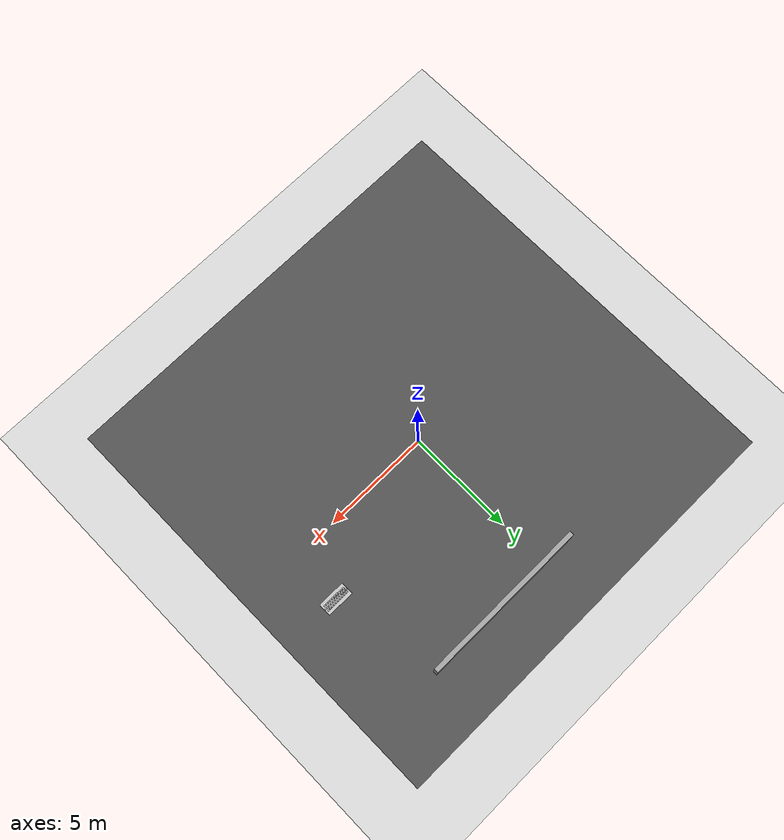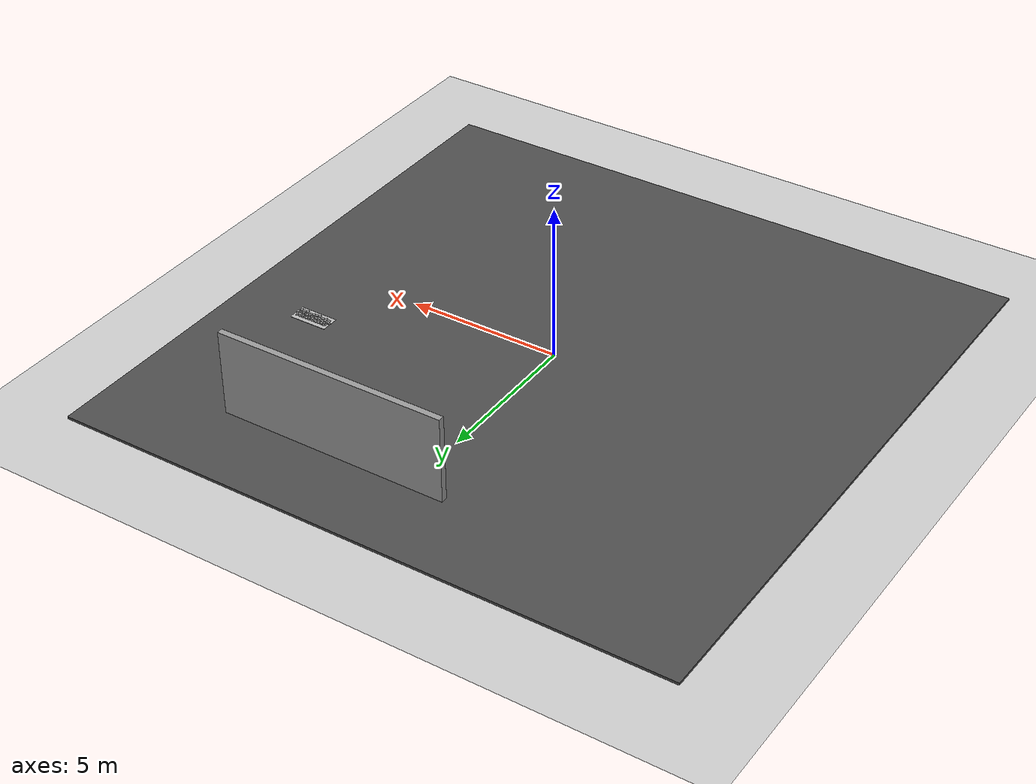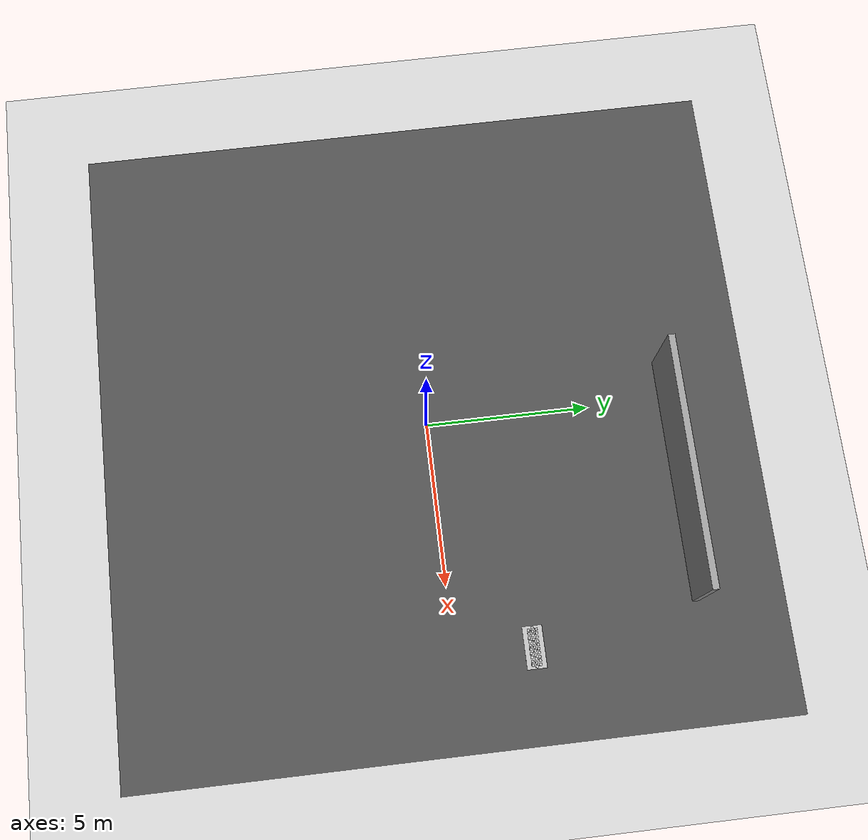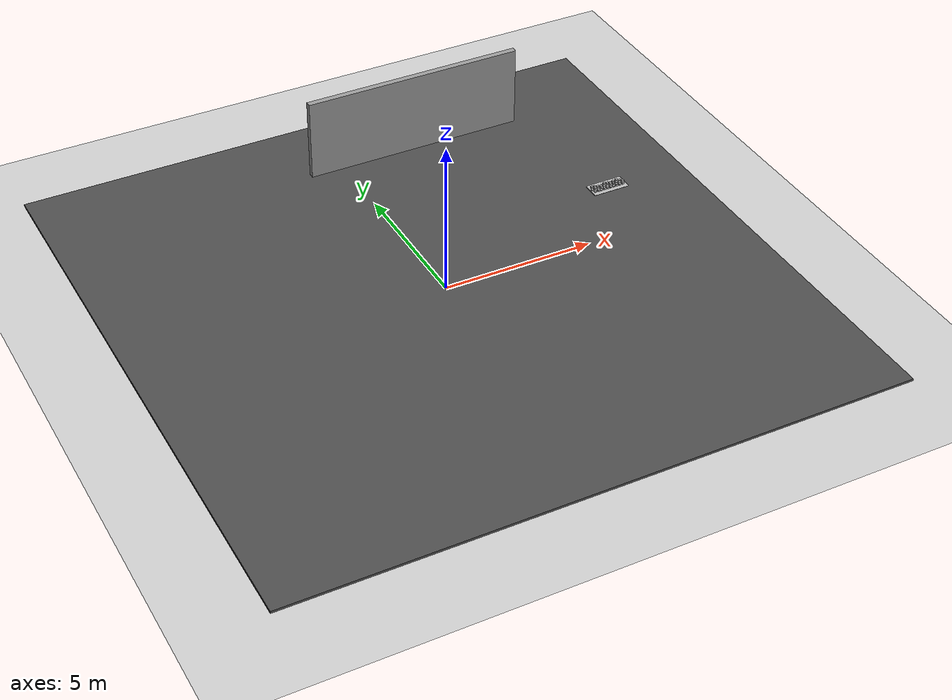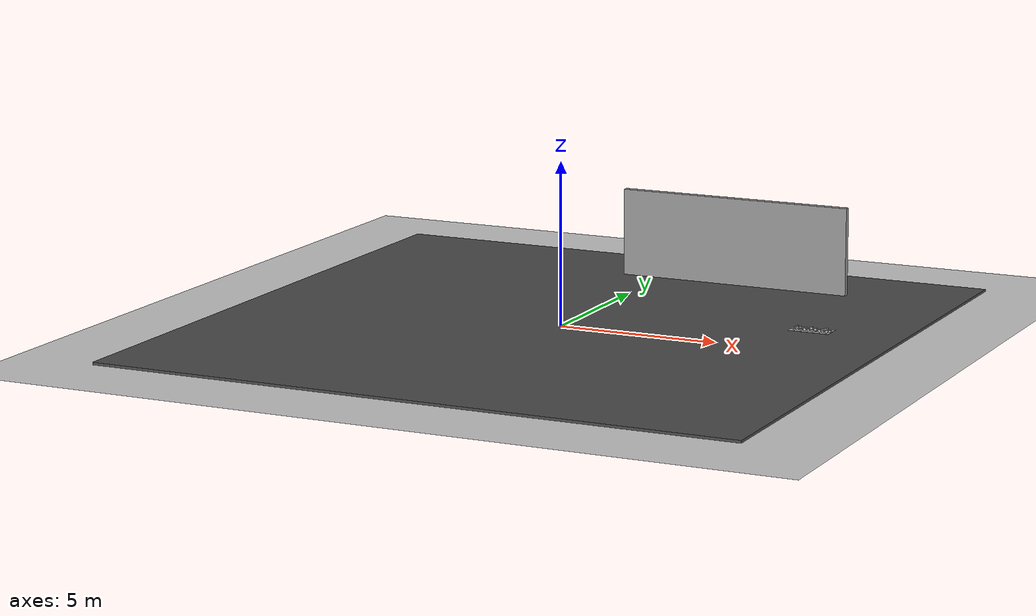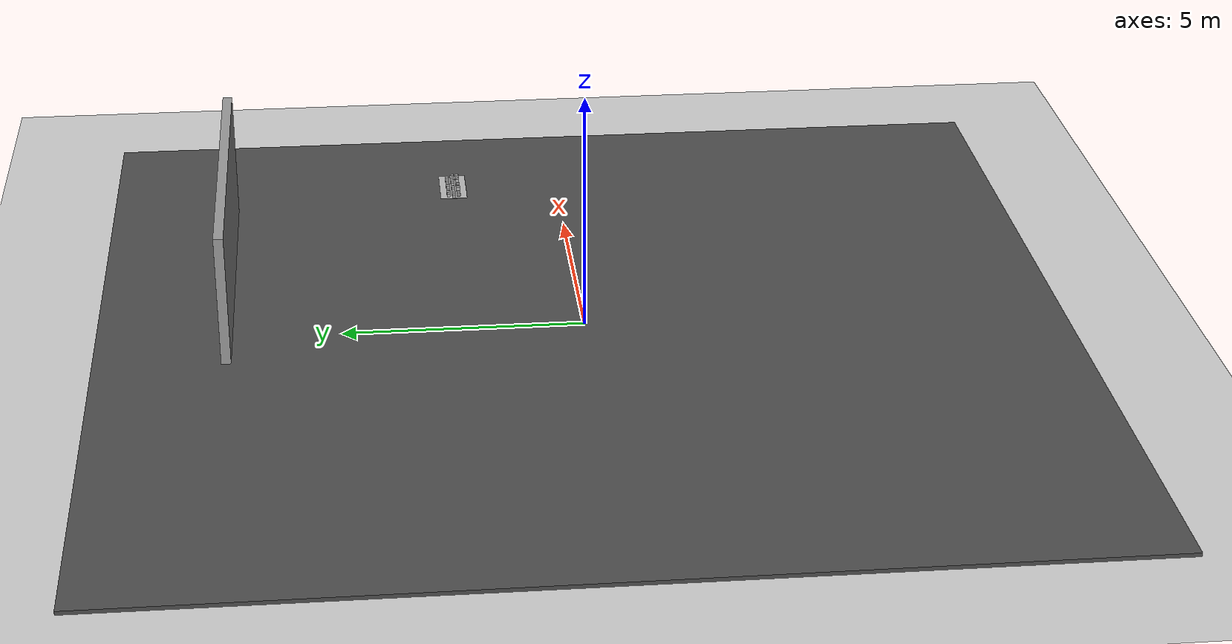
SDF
<sdf version="1.6">
 <world name="default">
  <light name="sun" type="directional">
   <pose>0 0 10 0 -0 0</pose>
   <diffuse>0.8 0.8 0.8 1</diffuse>
   <specular>0.2 0.2 0.2 1</specular>
   <attenuation>
    <range>1000</range>
    <constant>0.9</constant>
    <linear>0.01</linear>
    <quadratic>0.001</quadratic>
   </attenuation>
   <direction>-0.5 0.1 -0.9</direction>
  </light>
  <model name="ground_plane">
   <static>1</static>
   <link name="link">
    <collision name="collision">
     <geometry><plane><normal>0 0 1</normal><size>100 100</size></plane></geometry>
     <surface><friction><ode><mu>100</mu><mu2>50</mu2></ode></friction></surface>
    </collision>
    <visual name="visual">
     <cast_shadows>0</cast_shadows>
     <geometry><plane><normal>0 0 1</normal><size>100 100</size></plane></geometry>
     <material>
      <script><uri>file://media/materials/scripts/gazebo.material</uri><name>Gazebo/Grey</name></script>
     </material>
    </visual>
   </link>
  </model>
  <gravity>0 0 -9.8</gravity>
  <magnetic_field>6e-06 2.3e-05 -4.2e-05</magnetic_field>
  <atmosphere type="adiabatic"/>
  <physics name="default_physics" default="0" type="ode">
   <max_step_size>0.001</max_step_size>
   <real_time_factor>1</real_time_factor>
   <real_time_update_rate>1000</real_time_update_rate>
  </physics>
  <scene><ambient>0.4 0.4 0.4 1</ambient><background>0.7 0.7 0.7 1</background><shadows>1</shadows></scene>
  <spherical_coordinates>
   <surface_model>EARTH_WGS84</surface_model>
   <latitude_deg>0</latitude_deg>
   <longitude_deg>0</longitude_deg>
   <elevation>0</elevation>
   <heading_deg>0</heading_deg>
  </spherical_coordinates>
  <model name="asphalt_plane">
   <static>1</static>
   <link name="link">
    <collision name="collision"><geometry><box><size>20 20 0.1</size></box></geometry></collision>
    <visual name="visual">
     <cast_shadows>0</cast_shadows>
     <geometry><box><size>20 20 0.1</size></box></geometry>
     <material>
      <script>
       <uri>model://asphalt_plane/materials/scripts</uri>
       <uri>model://asphalt_plane/materials/textures</uri>
       <name>vrc/asphalt</name>
      </script>
     </material>
    </visual>
   </link>
   <pose>-0.067378 0.021113 0 0 -0 0</pose>
  </model>
  <model name="grey_wall">
   <static>1</static>
   <link name="link">
    <pose>0 0 1.4 0 -0 0</pose>
    <collision name="collision"><geometry><box><size>7.5 0.2 2.8</size></box></geometry></collision>
    <visual name="visual">
     <cast_shadows>0</cast_shadows>
     <geometry><box><size>7.5 0.2 2.8</size></box></geometry>
     <material>
      <script>
       <uri>model://grey_wall/materials/scripts</uri>
       <uri>model://grey_wall/materials/textures</uri>
       <name>vrc/grey_wall</name>
      </script>
     </material>
    </visual>
   </link>
   <pose>2.55142 7.34002 0 0 -0 0</pose>
  </model>
  <model name="frc2016_roughterrain">
   <static>1</static>
   <link name="link">
    <visual name="platform">
     <pose>0 0 0.08269 0 -0 0</pose>
     <geometry><box><size>1.27 0.5969 0.003175</size></box></geometry>
    </visual>
    <collision name="platform">
     <pose>0 0 0.08269 0 -0 0</pose>
     <geometry><box><size>1.27 0.5969 0.003175</size></box></geometry>
    </collision>
    <visual name="row1_block1_sm">
     <pose>0.51435 0.1143 0.09698 0 -0 0</pose>
     <geometry><box><size>0.0762 0.0762 0.0254</size></box></geometry>
    </visual>
    <collision name="row1_block1_sm">
     <pose>0.51435 0.1143 0.09698 0 -0 0</pose>
     <geometry><box><size>0.0762 0.0762 0.0254</size></box></geometry>
    </collision>
    <visual name="row1_block2_lg">
     <pose>0.40005 0.1143 0.12238 0 -0 0</pose>
     <geometry><box><size>0.0762 0.0762 0.0762</size></box></geometry>
    </visual>
    <collision name="row1_block2_lg">
     <pose>0.40005 0.1143 0.12238 0 -0 0</pose>
     <geometry><box><size>0.0762 0.0762 0.0762</size></box></geometry>
    </collision>
    <visual name="row1_block3_md">
     <pose>0.28575 0.1143 0.10968 0 -0 0</pose>
     <geometry><box><size>0.0762 0.0762 0.0508</size></box></geometry>
    </visual>
    <collision name="row1_block3_md">
     <pose>0.28575 0.1143 0.10968 0 -0 0</pose>
     <geometry><box><size>0.0762 0.0762 0.0508</size></box></geometry>
    </collision>
    <visual name="row1_block4_sm">
     <pose>0.17145 0.1143 0.09698 0 -0 0</pose>
     <geometry><box><size>0.0762 0.0762 0.0254</size></box></geometry>
    </visual>
    <collision name="row1_block4_sm">
     <pose>0.17145 0.1143 0.09698 0 -0 0</pose>
     <geometry><box><size>0.0762 0.0762 0.0254</size></box></geometry>
    </collision>
    <visual name="row1_block5_md">
     <pose>0.05715 0.1143 0.10968 0 -0 0</pose>
     <geometry><box><size>0.0762 0.0762 0.0508</size></box></geometry>
    </visual>
    <collision name="row1_block5_md">
     <pose>0.05715 0.1143 0.10968 0 -0 0</pose>
     <geometry><box><size>0.0762 0.0762 0.0508</size></box></geometry>
    </collision>
    <visual name="row1_block6_lg">
     <pose>-0.05715 0.1143 0.12238 0 -0 0</pose>
     <geometry><box><size>0.0762 0.0762 0.0762</size></box></geometry>
    </visual>
    <collision name="row1_block6_lg">
     <pose>-0.05715 0.1143 0.12238 0 -0 0</pose>
     <geometry><box><size>0.0762 0.0762 0.0762</size></box></geometry>
    </collision>
    <visual name="row1_block7_sm">
     <pose>-0.17145 0.1143 0.09698 0 -0 0</pose>
     <geometry><box><size>0.0762 0.0762 0.0254</size></box></geometry>
    </visual>
    <collision name="row1_block7_sm">
     <pose>-0.17145 0.1143 0.09698 0 -0 0</pose>
     <geometry><box><size>0.0762 0.0762 0.0254</size></box></geometry>
    </collision>
    <visual name="row1_block8_sm">
     <pose>-0.28575 0.1143 0.09698 0 -0 0</pose>
     <geometry><box><size>0.0762 0.0762 0.0254</size></box></geometry>
    </visual>
    <collision name="row1_block8_sm">
     <pose>-0.28575 0.1143 0.09698 0 -0 0</pose>
     <geometry><box><size>0.0762 0.0762 0.0254</size></box></geometry>
    </collision>
    <visual name="row1_block9_md">
     <pose>-0.40005 0.1143 0.10968 0 -0 0</pose>
     <geometry><box><size>0.0762 0.0762 0.0508</size></box></geometry>
    </visual>
    <collision name="row1_block9_md">
     <pose>-0.40005 0.1143 0.10968 0 -0 0</pose>
     <geometry><box><size>0.0762 0.0762 0.0508</size></box></geometry>
    </collision>
    <visual name="row1_block10_lg">
     <pose>-0.51435 0.1143 0.12238 0 -0 0</pose>
     <geometry><box><size>0.0762 0.0762 0.0762</size></box></geometry>
    </visual>
    <collision name="row1_block10_lg">
     <pose>-0.51435 0.1143 0.12238 0 -0 0</pose>
     <geometry><box><size>0.0762 0.0762 0.0762</size></box></geometry>
    </collision>
    <visual name="row2_block1_md">
     <pose>0.5715 0 0.10968 0 -0 0</pose>
     <geometry><box><size>0.0762 0.0762 0.0508</size></box></geometry>
    </visual>
    <collision name="row2_block1_md">
     <pose>0.5715 0 0.10968 0 -0 0</pose>
     <geometry><box><size>0.0762 0.0762 0.0508</size></box></geometry>
    </collision>
    <visual name="row2_block2_sm">
     <pose>0.4572 0 0.09698 0 -0 0</pose>
     <geometry><box><size>0.0762 0.0762 0.0254</size></box></geometry>
    </visual>
    <collision name="row2_block2_sm">
     <pose>0.4572 0 0.09698 0 -0 0</pose>
     <geometry><box><size>0.0762 0.0762 0.0254</size></box></geometry>
    </collision>
    <visual name="row2_block3_lg">
     <pose>0.3429 0 0.12238 0 -0 0</pose>
     <geometry><box><size>0.0762 0.0762 0.0762</size></box></geometry>
    </visual>
    <collision name="row2_block3_lg">
     <pose>0.3429 0 0.12238 0 -0 0</pose>
     <geometry><box><size>0.0762 0.0762 0.0762</size></box></geometry>
    </collision>
    <visual name="row2_block4_md">
     <pose>0.2286 0 0.10968 0 -0 0</pose>
     <geometry><box><size>0.0762 0.0762 0.0508</size></box></geometry>
    </visual>
    <collision name="row2_block4_md">
     <pose>0.2286 0 0.10968 0 -0 0</pose>
     <geometry><box><size>0.0762 0.0762 0.0508</size></box></geometry>
    </collision>
    <visual name="row2_block5_lg">
     <pose>0.1143 0 0.12238 0 -0 0</pose>
     <geometry><box><size>0.0762 0.0762 0.0762</size></box></geometry>
    </visual>
    <collision name="row2_block5_lg">
     <pose>0.1143 0 0.12238 0 -0 0</pose>
     <geometry><box><size>0.0762 0.0762 0.0762</size></box></geometry>
    </collision>
    <visual name="row2_block6_sm">
     <pose>0 0 0.09698 0 -0 0</pose>
     <geometry><box><size>0.0762 0.0762 0.0254</size></box></geometry>
    </visual>
    <collision name="row2_block6_sm">
     <pose>0 0 0.09698 0 -0 0</pose>
     <geometry><box><size>0.0762 0.0762 0.0254</size></box></geometry>
    </collision>
    <visual name="row2_block7_md">
     <pose>-0.1143 0 0.10968 0 -0 0</pose>
     <geometry><box><size>0.0762 0.0762 0.0508</size></box></geometry>
    </visual>
    <collision name="row2_block7_md">
     <pose>-0.1143 0 0.10968 0 -0 0</pose>
     <geometry><box><size>0.0762 0.0762 0.0508</size></box></geometry>
    </collision>
    <visual name="row2_block8_lg">
     <pose>-0.2286 0 0.12238 0 -0 0</pose>
     <geometry><box><size>0.0762 0.0762 0.0762</size></box></geometry>
    </visual>
    <collision name="row2_block8_lg">
     <pose>-0.2286 0 0.12238 0 -0 0</pose>
     <geometry><box><size>0.0762 0.0762 0.0762</size></box></geometry>
    </collision>
    <visual name="row2_block9_sm">
     <pose>-0.3429 0 0.09698 0 -0 0</pose>
     <geometry><box><size>0.0762 0.0762 0.0254</size></box></geometry>
    </visual>
    <collision name="row2_block9_sm">
     <pose>-0.3429 0 0.09698 0 -0 0</pose>
     <geometry><box><size>0.0762 0.0762 0.0254</size></box></geometry>
    </collision>
    <visual name="row2_block10_lg">
     <pose>-0.4572 0 0.12238 0 -0 0</pose>
     <geometry><box><size>0.0762 0.0762 0.0762</size></box></geometry>
    </visual>
    <collision name="row2_block10_lg">
     <pose>-0.4572 0 0.12238 0 -0 0</pose>
     <geometry><box><size>0.0762 0.0762 0.0762</size></box></geometry>
    </collision>
    <visual name="row2_block11_md">
     <pose>-0.5715 0 0.10968 0 -0 0</pose>
     <geometry><box><size>0.0762 0.0762 0.0508</size></box></geometry>
    </visual>
    <collision name="row2_block11_md">
     <pose>-0.5715 0 0.10968 0 -0 0</pose>
     <geometry><box><size>0.0762 0.0762 0.0508</size></box></geometry>
    </collision>
    <visual name="row3_block1_lg">
     <pose>0.51435 -0.1143 0.12238 0 -0 0</pose>
     <geometry><box><size>0.0762 0.0762 0.0762</size></box></geometry>
    </visual>
    <collision name="row3_block1_lg">
     <pose>0.51435 -0.1143 0.12238 0 -0 0</pose>
     <geometry><box><size>0.0762 0.0762 0.0762</size></box></geometry>
    </collision>
    <visual name="row3_block2_md">
     <pose>0.40005 -0.1143 0.10968 0 -0 0</pose>
     <geometry><box><size>0.0762 0.0762 0.0508</size></box></geometry>
    </visual>
    <collision name="row3_block2_md">
     <pose>0.40005 -0.1143 0.10968 0 -0 0</pose>
     <geometry><box><size>0.0762 0.0762 0.0508</size></box></geometry>
    </collision>
    <visual name="row3_block3_lg">
     <pose>0.28575 -0.1143 0.12238 0 -0 0</pose>
     <geometry><box><size>0.0762 0.0762 0.0762</size></box></geometry>
    </visual>
    <collision name="row3_block3_lg">
     <pose>0.28575 -0.1143 0.12238 0 -0 0</pose>
     <geometry><box><size>0.0762 0.0762 0.0762</size></box></geometry>
    </collision>
    <visual name="row3_block4_sm">
     <pose>0.17145 -0.1143 0.09698 0 -0 0</pose>
     <geometry><box><size>0.0762 0.0762 0.0254</size></box></geometry>
    </visual>
    <collision name="row3_block4_sm">
     <pose>0.17145 -0.1143 0.09698 0 -0 0</pose>
     <geometry><box><size>0.0762 0.0762 0.0254</size></box></geometry>
    </collision>
    <visual name="row3_block5_md">
     <pose>0.05715 -0.1143 0.10968 0 -0 0</pose>
     <geometry><box><size>0.0762 0.0762 0.0508</size></box></geometry>
    </visual>
    <collision name="row3_block5_md">
     <pose>0.05715 -0.1143 0.10968 0 -0 0</pose>
     <geometry><box><size>0.0762 0.0762 0.0508</size></box></geometry>
    </collision>
    <visual name="row3_block6_md">
     <pose>-0.05715 -0.1143 0.10968 0 -0 0</pose>
     <geometry><box><size>0.0762 0.0762 0.0508</size></box></geometry>
    </visual>
    <collision name="row3_block6_md">
     <pose>-0.05715 -0.1143 0.10968 0 -0 0</pose>
     <geometry><box><size>0.0762 0.0762 0.0508</size></box></geometry>
    </collision>
    <visual name="row3_block7_lg">
     <pose>-0.17145 -0.1143 0.12238 0 -0 0</pose>
     <geometry><box><size>0.0762 0.0762 0.0762</size></box></geometry>
    </visual>
    <collision name="row3_block7_lg">
     <pose>-0.17145 -0.1143 0.12238 0 -0 0</pose>
     <geometry><box><size>0.0762 0.0762 0.0762</size></box></geometry>
    </collision>
    <visual name="row3_block8_sm">
     <pose>-0.28575 -0.1143 0.09698 0 -0 0</pose>
     <geometry><box><size>0.0762 0.0762 0.0254</size></box></geometry>
    </visual>
    <collision name="row3_block8_sm">
     <pose>-0.28575 -0.1143 0.09698 0 -0 0</pose>
     <geometry><box><size>0.0762 0.0762 0.0254</size></box></geometry>
    </collision>
    <visual name="row3_block9_md">
     <pose>-0.40005 -0.1143 0.10968 0 -0 0</pose>
     <geometry><box><size>0.0762 0.0762 0.0508</size></box></geometry>
    </visual>
    <collision name="row3_block9_md">
     <pose>-0.40005 -0.1143 0.10968 0 -0 0</pose>
     <geometry><box><size>0.0762 0.0762 0.0508</size></box></geometry>
    </collision>
    <visual name="row3_block10_sm">
     <pose>-0.51435 -0.1143 0.09698 0 -0 0</pose>
     <geometry><box><size>0.0762 0.0762 0.0254</size></box></geometry>
    </visual>
    <collision name="row3_block10_sm">
     <pose>-0.51435 -0.1143 0.09698 0 -0 0</pose>
     <geometry><box><size>0.0762 0.0762 0.0254</size></box></geometry>
    </collision>
   </link>
   <pose>7.098 2.37756 0 0 -0 0</pose>
  </model>
 </world>
</sdf>
